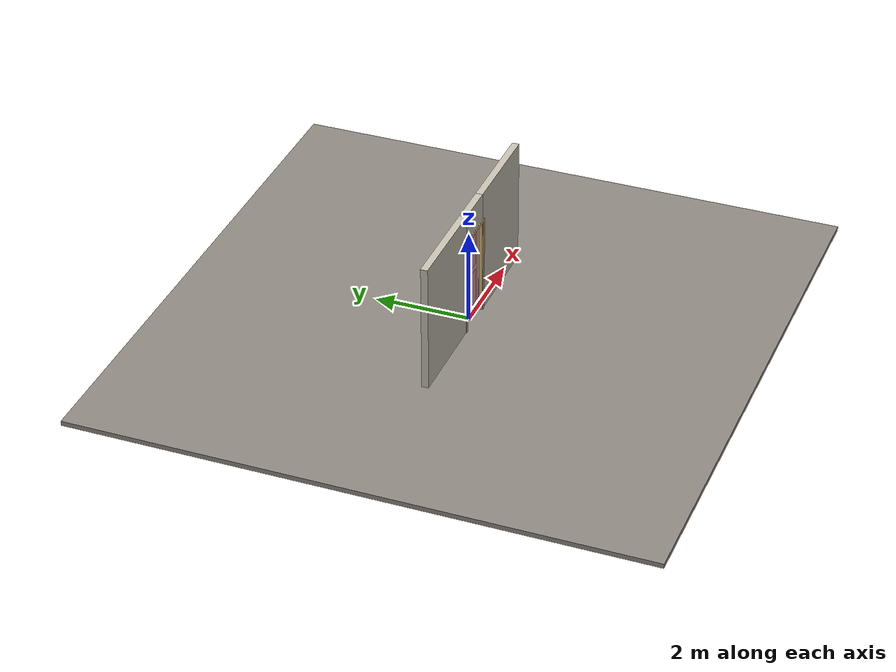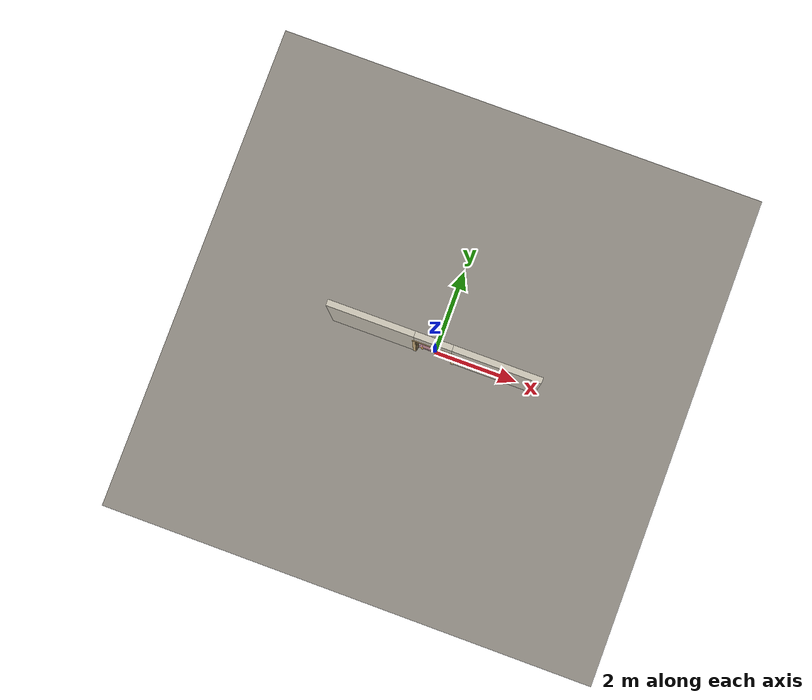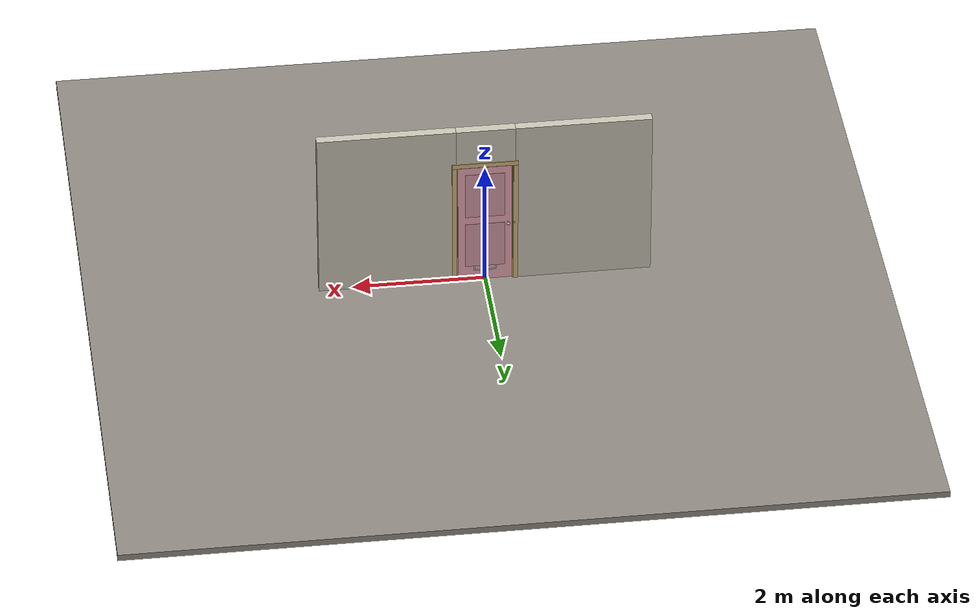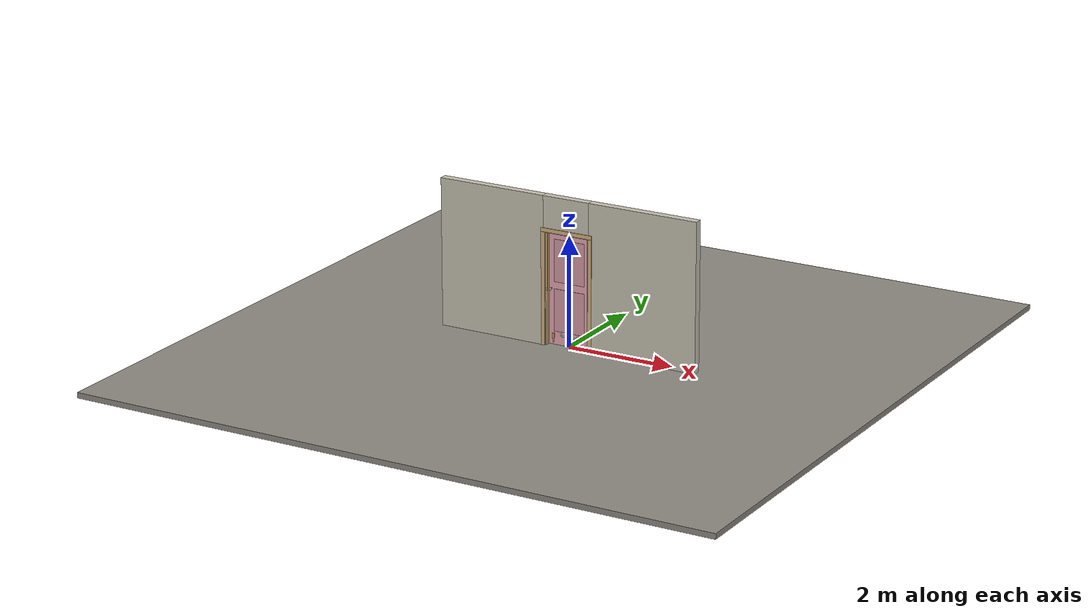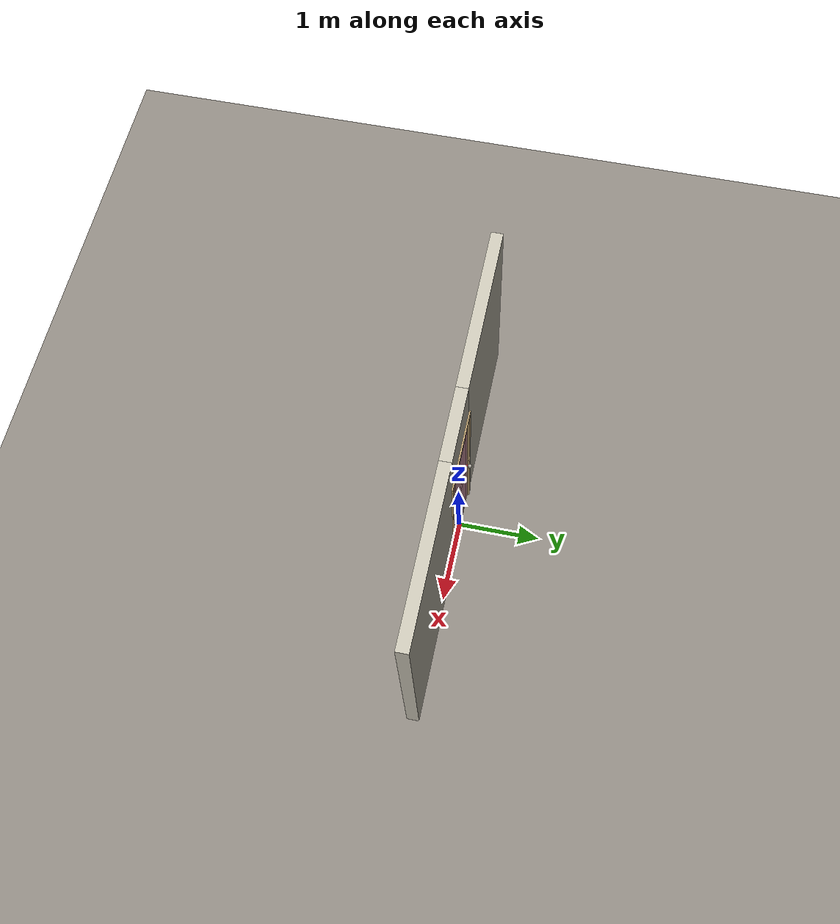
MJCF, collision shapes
<?xml version="1.0" ?>
<mujoco model="db0986_swing_single_full">
  <compiler angle="radian" meshdir="../../hardware" texturedir="../../textures" autolimits="true" inertiafromgeom="false"/>
  <option timestep="0.002" integrator="implicitfast" cone="elliptic" impratio="10" noslip_iterations="3">
    <flag multiccd="enable"/>
  </option>
  <size memory="16M"/>
  <default>
    <geom condim="4" solref="0.005 1" solimp="0.95 0.99 0.001"/>
    <joint solreflimit="0.005 1" solimplimit="0.95 0.99 0.001"/>
    <tendon solreflimit="0.005 1"/>
    <equality solref="0.002 1"/>
  </default>
  <visual>
    <headlight ambient="0.4 0.4 0.4" diffuse="0.7 0.7 0.7" specular="0.2 0.2 0.2"/>
    <quality shadowsize="4096"/>
    <map znear="0.01" zfar="60"/>
  </visual>
  <asset>
    <mesh name="hinge_96510cf394" file="hinge_96510cf394.obj"/>
    <mesh name="hinge_jamb_7fd4ca52b2" file="hinge_jamb_7fd4ca52b2.obj"/>
    <mesh name="knob_248d825e64" file="knob_248d825e64.obj"/>
    <mesh name="knob_d1888f6f03" file="knob_d1888f6f03.obj"/>
    <material name="mat_floor" rgba="0.55 0.53 0.5 1" specular="0.2" shininess="0.15" reflectance="0"/>
    <material name="mat_wall" rgba="0.78 0.76 0.7 1" specular="0.2" shininess="0.1" reflectance="0"/>
    <material name="mat_leaf" rgba="0.9 0.65 0.7 1" specular="0.2" shininess="0.31" reflectance="0"/>
    <material name="mat_leaf_panel" rgba="0.828 0.598 0.644 1" specular="0.2" shininess="0.31" reflectance="0"/>
    <material name="mat_hinge" rgba="0.65 0.66 0.68 1" specular="0.74" shininess="0.5" reflectance="0.36"/>
    <material name="mat_op_nickel_satin" rgba="0.72 0.7 0.66 1" specular="0.8" shininess="0.65" reflectance="0.4"/>
    <material name="mat_trim" rgba="0.85 0.66 0.3 1" specular="0.8" shininess="0.75" reflectance="0.4"/>
    <material name="mat_bolt" rgba="0.85 0.66 0.3 1" specular="0.8" shininess="0.75" reflectance="0.4"/>
    <material name="mat_frame" rgba="0.82 0.7 0.5 1" specular="0.2" shininess="0.45" reflectance="0"/>
    <material name="mat_vent" rgba="0.8 0.81 0.83 1" specular="0.8" shininess="0.6" reflectance="0.4"/>
    <material name="mat_kickdown" rgba="0.85 0.66 0.3 1" specular="0.8" shininess="0.75" reflectance="0.4"/>
    <material name="mat_kickdown_pad" rgba="0.92 0.92 0.9 1" specular="0.2" shininess="0.6" reflectance="0"/>
    <texture name="skybox" type="skybox" builtin="gradient" rgb1="0.6 0.7 0.85" rgb2="0.9 0.92 0.95" width="256" height="256"/>
  </asset>
  <worldbody>
    <light name="sun" pos="1.5 -2.5 4" dir="-0.3 0.5 -0.8" directional="true" diffuse="0.8 0.8 0.8" specular="0.3 0.3 0.3" castshadow="true"/>
    <light name="fill" pos="-1.5 2.5 3" dir="0.3 -0.5 -0.7" directional="true" diffuse="0.35 0.35 0.4" castshadow="false"/>
    <camera name="robot_view" pos="0 -2.590187 1.734312" xyaxes="1 0 0 0 0.26963 0.962964" fovy="52"/>
    <camera name="far_view" pos="0 2.494187 1.734312" xyaxes="-1 0 0 0 -0.26963 0.962964" fovy="52"/>
    <camera name="iso" pos="-1.932062 -2.183438 2.141063" xyaxes="0.741536 -0.670913 0 0.242917 0.268487 0.932151" fovy="46"/>
    <camera name="detail_handle" pos="-0.166 -0.864 1.296" xyaxes="0.97561 0.219512 0 -0.070934 0.315262 0.94635" fovy="38"/>
    <geom name="floor" type="box" size="6 6 0.05" pos="0 0 -0.05" material="mat_floor" group="0" contype="1" conaffinity="1" friction="0.8 0.005 0.0001" density="2400"/>
    <geom name="wall_left" type="box" size="1.0205 0.0725 1.35" pos="-1.4795 -0.048 1.35" material="mat_wall" group="0" contype="1" conaffinity="1" friction="0.6 0.005 0.0001" density="800"/>
    <geom name="wall_right" type="box" size="1.0355 0.0725 1.35" pos="1.4645 -0.048 1.35" material="mat_wall" group="0" contype="1" conaffinity="1" friction="0.6 0.005 0.0001" density="800"/>
    <geom name="wall_header" type="box" size="0.444 0.0725 0.303" pos="-0.015 -0.048 2.397" material="mat_wall" group="0" contype="1" conaffinity="1" friction="0.6 0.005 0.0001" density="800"/>
    <geom name="hinge_0_jamb" type="mesh" mesh="hinge_jamb_7fd4ca52b2" pos="0.407 0.0245 0.259" quat="0 0 0 1" material="mat_hinge" group="1" contype="0" conaffinity="0" density="7850"/>
    <geom name="hinge_1_jamb" type="mesh" mesh="hinge_jamb_7fd4ca52b2" pos="0.407 0.0245 1.861" quat="0 0 0 1" material="mat_hinge" group="1" contype="0" conaffinity="0" density="7850"/>
    <geom name="jamb_hinge" type="box" size="0.0095 0.0725 1.0225" pos="0.4195 -0.048 1.0225" material="mat_frame" group="0" contype="1" conaffinity="1" friction="0.6 0.005 0.0001" density="400"/>
    <geom name="strike_1016_wall_n" type="box" size="0.0245 0.056325 0.0167" pos="-0.4345 -0.064175 1.016" material="mat_frame" group="0" contype="1" conaffinity="1" friction="0.6 0.005 0.0001" density="400"/>
    <geom name="strike_1016_wall_p" type="box" size="0.0245 0.008 0.0167" pos="-0.4345 0.01585 1.016" material="mat_frame" group="0" contype="1" conaffinity="1" friction="0.6 0.005 0.0001" density="400"/>
    <geom name="strike_1016_ramp" type="box" size="0.0245 0.01649 0.0167" pos="-0.439136 0.028673 1.016" quat="0.977148 0 0 0.212558" material="mat_frame" group="0" contype="1" conaffinity="1" friction="0.12 0.005 0.0001" density="400"/>
    <geom name="strike_1016_back" type="box" size="0.01615 0.00785 0.0167" pos="-0.44285 0 1.016" material="mat_frame" group="0" contype="1" conaffinity="1" friction="0.6 0.005 0.0001" density="400"/>
    <geom name="jamb_strike_0" type="box" size="0.0245 0.0725 0.49965" pos="-0.4345 -0.048 0.49965" material="mat_frame" group="0" contype="1" conaffinity="1" friction="0.6 0.005 0.0001" density="400"/>
    <geom name="jamb_strike_1" type="box" size="0.0245 0.0725 0.50615" pos="-0.4345 -0.048 1.53885" material="mat_frame" group="0" contype="1" conaffinity="1" friction="0.6 0.005 0.0001" density="400"/>
    <geom name="jamb_head" type="box" size="0.444 0.0725 0.0095" pos="-0.015 -0.048 2.0545" material="mat_frame" group="0" contype="1" conaffinity="1" friction="0.6 0.005 0.0001" density="400"/>
    <geom name="head_stud" type="box" size="0.444 0.0725 0.015" pos="-0.015 -0.048 2.079" material="mat_wall" group="0" contype="1" conaffinity="1" friction="0.6 0.005 0.0001" density="500"/>
    <geom name="stop_hinge" type="box" size="0.0055 0.016 1.0225" pos="0.4045 -0.034 1.0225" material="mat_frame" group="0" contype="1" conaffinity="1" friction="0.6 0.005 0.0001" density="400"/>
    <geom name="stop_strike" type="box" size="0.0055 0.016 1.0225" pos="-0.4045 -0.034 1.0225" material="mat_frame" group="0" contype="1" conaffinity="1" friction="0.6 0.005 0.0001" density="400"/>
    <geom name="stop_head" type="box" size="0.41 0.016 0.0055" pos="0 -0.034 2.0395" material="mat_frame" group="0" contype="1" conaffinity="1" friction="0.6 0.005 0.0001" density="400"/>
    <geom name="casing_l_n" type="box" size="0.035 0.008 1.032" pos="-0.459 -0.1285 1.0225" material="mat_frame" group="2" contype="0" conaffinity="0" density="400"/>
    <geom name="casing_r_n" type="box" size="0.035 0.008 1.032" pos="0.459 -0.1285 1.0225" material="mat_frame" group="2" contype="0" conaffinity="0" density="400"/>
    <geom name="casing_h_n" type="box" size="0.494 0.008 0.035" pos="0 -0.1285 2.094" material="mat_frame" group="2" contype="0" conaffinity="0" density="400"/>
    <geom name="casing_l_p" type="box" size="0.035 0.008 1.032" pos="-0.459 0.0325 1.0225" material="mat_frame" group="2" contype="0" conaffinity="0" density="400"/>
    <geom name="casing_r_p" type="box" size="0.035 0.008 1.032" pos="0.459 0.0325 1.0225" material="mat_frame" group="2" contype="0" conaffinity="0" density="400"/>
    <geom name="casing_h_p" type="box" size="0.494 0.008 0.035" pos="0 0.0325 2.094" material="mat_frame" group="2" contype="0" conaffinity="0" density="400"/>
    <site name="approach_point" pos="0 -1.5 0" quat="1 0 0 0" size="0.05" rgba="0.2 0.9 0.2 0.5" group="4"/>
    <site name="goal_point" pos="0 1.5 0" quat="1 0 0 0" size="0.05" rgba="0.2 0.9 0.2 0.5" group="4"/>
    <site name="door_plane_center" pos="0 0 1.0225" quat="1 0 0 0" size="0.02" rgba="0.2 0.9 0.2 0.5" group="4"/>
    <body name="leaf" pos="0.41 0 0">
      <inertial pos="-0.427474 -0.00237 0.911621" mass="15.008014" quat="0.516847 -0.512667 -0.48936 -0.480176" diaginertia="0.84244472 5.713766917 6.55104885"/>
      <joint name="leaf_hinge" type="hinge" axis="0 0 -1" pos="-0.003 0.0245 0" limited="true" range="0 1.745329" damping="0.210326" frictionloss="0.199597" armature="0.02"/>
      <geom name="leaf_slab" type="box" size="0.4065 0.0175 1.016" pos="-0.4095 0 1.025" material="mat_leaf" group="0" contype="1" conaffinity="1" friction="0.35 0.005 0.0001" density="1"/>
      <geom name="leaf_panel_0_n" type="box" size="0.2965 0.003 0.38422" pos="-0.4095 -0.0205 0.63674" material="mat_leaf_panel" group="1" contype="0" conaffinity="0" density="1"/>
      <geom name="leaf_panel_0_p" type="box" size="0.2965 0.003 0.38422" pos="-0.4095 0.0205 0.63674" material="mat_leaf_panel" group="1" contype="0" conaffinity="0" density="1"/>
      <geom name="leaf_panel_1_n" type="box" size="0.2965 0.003 0.38422" pos="-0.4095 -0.0205 1.53518" material="mat_leaf_panel" group="1" contype="0" conaffinity="0" density="1"/>
      <geom name="leaf_panel_1_p" type="box" size="0.2965 0.003 0.38422" pos="-0.4095 0.0205 1.53518" material="mat_leaf_panel" group="1" contype="0" conaffinity="0" density="1"/>
      <geom name="hinge_0" type="mesh" mesh="hinge_96510cf394" pos="-0.003 0.0245 0.259" quat="0 0 0 1" material="mat_hinge" group="1" contype="0" conaffinity="0" density="7850"/>
      <geom name="hinge_1" type="mesh" mesh="hinge_96510cf394" pos="-0.003 0.0245 1.861" quat="0 0 0 1" material="mat_hinge" group="1" contype="0" conaffinity="0" density="7850"/>
      <geom name="leaf_latch_bolt_faceplate" type="box" size="0.0006 0.01235 0.0267" pos="-0.8154 0 1.016" material="mat_bolt" group="1" contype="0" conaffinity="0" density="8500"/>
      <geom name="louver_vent_stile_n_l" type="box" size="0.012 0.002 0.137" pos="-0.5715 -0.0195 0.314" material="mat_vent" group="2" contype="0" conaffinity="0" density="2700"/>
      <geom name="louver_vent_stile_n_r" type="box" size="0.012 0.002 0.137" pos="-0.2475 -0.0195 0.314" material="mat_vent" group="2" contype="0" conaffinity="0" density="2700"/>
      <geom name="louver_vent_rail_n_b" type="box" size="0.15 0.002 0.012" pos="-0.4095 -0.0195 0.177" material="mat_vent" group="2" contype="0" conaffinity="0" density="2700"/>
      <geom name="louver_vent_rail_n_t" type="box" size="0.15 0.002 0.012" pos="-0.4095 -0.0195 0.451" material="mat_vent" group="2" contype="0" conaffinity="0" density="2700"/>
      <geom name="louver_vent_stile_p_l" type="box" size="0.012 0.002 0.137" pos="-0.5715 0.0195 0.314" material="mat_vent" group="2" contype="0" conaffinity="0" density="2700"/>
      <geom name="louver_vent_stile_p_r" type="box" size="0.012 0.002 0.137" pos="-0.2475 0.0195 0.314" material="mat_vent" group="2" contype="0" conaffinity="0" density="2700"/>
      <geom name="louver_vent_rail_p_b" type="box" size="0.15 0.002 0.012" pos="-0.4095 0.0195 0.177" material="mat_vent" group="2" contype="0" conaffinity="0" density="2700"/>
      <geom name="louver_vent_rail_p_t" type="box" size="0.15 0.002 0.012" pos="-0.4095 0.0195 0.451" material="mat_vent" group="2" contype="0" conaffinity="0" density="2700"/>
      <geom name="louver_vent_slat_0" type="box" size="0.15 0.0015 0.015" pos="-0.4095 0 0.209833" quat="0.965926 -0.258819 0 0" material="mat_vent" group="2" contype="0" conaffinity="0" density="2700"/>
      <geom name="louver_vent_slat_1" type="box" size="0.15 0.0015 0.015" pos="-0.4095 0 0.2515" quat="0.965926 -0.258819 0 0" material="mat_vent" group="2" contype="0" conaffinity="0" density="2700"/>
      <geom name="louver_vent_slat_2" type="box" size="0.15 0.0015 0.015" pos="-0.4095 0 0.293167" quat="0.965926 -0.258819 0 0" material="mat_vent" group="2" contype="0" conaffinity="0" density="2700"/>
      <geom name="louver_vent_slat_3" type="box" size="0.15 0.0015 0.015" pos="-0.4095 0 0.334833" quat="0.965926 -0.258819 0 0" material="mat_vent" group="2" contype="0" conaffinity="0" density="2700"/>
      <geom name="louver_vent_slat_4" type="box" size="0.15 0.0015 0.015" pos="-0.4095 0 0.3765" quat="0.965926 -0.258819 0 0" material="mat_vent" group="2" contype="0" conaffinity="0" density="2700"/>
      <geom name="louver_vent_slat_5" type="box" size="0.15 0.0015 0.015" pos="-0.4095 0 0.418167" quat="0.965926 -0.258819 0 0" material="mat_vent" group="2" contype="0" conaffinity="0" density="2700"/>
      <geom name="kickdown_housing" type="box" size="0.022 0.016 0.045" pos="-0.716 -0.0335 0.169" material="mat_kickdown" group="2" contype="0" conaffinity="0" density="8500"/>
      <geom name="kickdown_arm" type="box" size="0.012 0.006 0.045" pos="-0.716 -0.0295 0.104" material="mat_kickdown" group="2" contype="0" conaffinity="0" density="8500"/>
      <geom name="kickdown_pad" type="cylinder" size="0.014 0.006" pos="-0.716 -0.0295 0.061" material="mat_kickdown_pad" group="2" contype="0" conaffinity="0" density="1200"/>
      <site name="leaf_edge_mid" pos="-0.816 0 1.016" quat="1 0 0 0" size="0.02" rgba="0.2 0.9 0.2 0.5" group="4"/>
      <body name="leaf_handle" pos="-0.756 0 1.016">
        <inertial pos="0 -0.000216 0" mass="1.146661" quat="0.5 0.5 0.5 0.5" diaginertia="0.000312402 0.003728942 0.003728942"/>
        <joint name="leaf_handle_hinge" type="hinge" axis="0 1 0" limited="true" range="0 0.87" damping="0.143613" frictionloss="0.038" stiffness="0.5" springref="-0.5" armature="0.01"/>
        <geom name="leaf_handle_spindle" type="cylinder" size="0.006 0.0255" pos="0 0 0" quat="0.707107 -0.707107 0 0" material="mat_op_nickel_satin" group="1" contype="0" conaffinity="0" density="7850"/>
        <geom name="leaf_handle_knob_n" type="mesh" mesh="knob_248d825e64" pos="0 -0.0175 0" quat="0 0 -0.707107 0.707107" material="mat_op_nickel_satin" group="1" contype="0" conaffinity="0" density="3000"/>
        <geom name="leaf_handle_knob_col_n" type="sphere" size="0.0243" pos="0 -0.064 0" material="mat_op_nickel_satin" group="0" contype="1" conaffinity="1" friction="0.9 0.01 0.0001" density="3000"/>
        <geom name="leaf_handle_knob_neck_n" type="cylinder" size="0.011 0.012" pos="0 -0.0295 0" quat="0.707107 -0.707107 0 0" material="mat_op_nickel_satin" group="3" contype="1" conaffinity="1" rgba="0.8 0.3 0.3 0.25" friction="0.6 0.005 0.0001" density="3000"/>
        <geom name="leaf_handle_knob_p" type="mesh" mesh="knob_d1888f6f03" pos="0 0.0175 0" quat="0 0 0.707107 0.707107" material="mat_op_nickel_satin" group="1" contype="0" conaffinity="0" density="3000"/>
        <geom name="leaf_handle_knob_col_p" type="sphere" size="0.0243" pos="0 0.064 0" material="mat_op_nickel_satin" group="0" contype="1" conaffinity="1" friction="0.9 0.01 0.0001" density="3000"/>
        <geom name="leaf_handle_knob_neck_p" type="cylinder" size="0.011 0.012" pos="0 0.0295 0" quat="0.707107 -0.707107 0 0" material="mat_op_nickel_satin" group="3" contype="1" conaffinity="1" rgba="0.8 0.3 0.3 0.25" friction="0.6 0.005 0.0001" density="3000"/>
        <site name="leaf_handle_grip_n" pos="0 -0.064 0" quat="1 0 0 0" size="0.012" rgba="0.2 0.9 0.2 0.5" group="4"/>
        <site name="leaf_handle_grip_p" pos="0 0.064 0" quat="1 0 0 0" size="0.012" rgba="0.2 0.9 0.2 0.5" group="4"/>
      </body>
      <body name="leaf_latch_bolt" pos="-0.816 0 1.016">
        <inertial pos="0.00865 0 0" mass="0.041419" quat="0.92388 0.382683 0 0" diaginertia="0.000000798 0.000005598 0.000005598"/>
        <joint name="leaf_latch_bolt_slide" type="slide" axis="1 0 0" limited="true" range="0 0.0127" damping="2" frictionloss="0.3" stiffness="300" springref="-0.008333" armature="0.1"/>
        <geom name="leaf_latch_bolt_capsule" type="capsule" size="0.00635 0.015" pos="0.00865 0 0" quat="0.707107 0 -0.707107 0" material="mat_bolt" group="0" contype="1" conaffinity="1" friction="0.2 0.005 0.0001" density="8500"/>
      </body>
    </body>
  </worldbody>
  <tendon>
    <fixed name="leaf_latch_bolt_coupling" limited="true" range="0 10">
      <joint joint="leaf_latch_bolt_slide" coef="1"/>
      <joint joint="leaf_handle_hinge" coef="-0.015679"/>
    </fixed>
  </tendon>
  <sensor>
    <jointpos name="leaf_hinge_pos" joint="leaf_hinge"/>
    <jointvel name="leaf_hinge_vel" joint="leaf_hinge"/>
    <jointpos name="leaf_handle_hinge_pos" joint="leaf_handle_hinge"/>
    <jointvel name="leaf_handle_hinge_vel" joint="leaf_handle_hinge"/>
    <jointpos name="leaf_latch_bolt_slide_pos" joint="leaf_latch_bolt_slide"/>
    <jointvel name="leaf_latch_bolt_slide_vel" joint="leaf_latch_bolt_slide"/>
  </sensor>
</mujoco>
